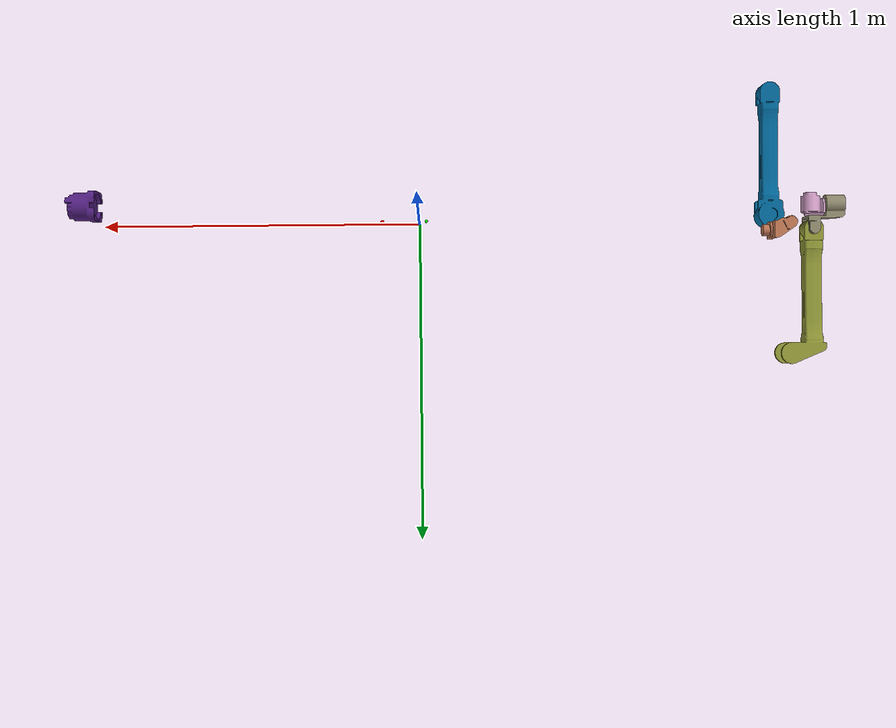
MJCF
<mujoco model="yam_ultra_26">
  <compiler angle="radian" meshdir="assets"/>

  <asset>
    <mesh name="base"  file="base.stl"/>
    <mesh name="link1" file="link1.stl"/>
    <mesh name="link2" file="link2.stl"/>
    <mesh name="link3" file="link3.stl"/>
    <mesh name="link4" file="link4.stl"/>
    <mesh name="link5" file="link5.stl"/>
  </asset>

  <worldbody>
    <geom pos="-0.0374966 -0.0464005 0.187501" quat="0.707105 0 0.707108 0" type="mesh" rgba="0.317647 0.121569 0.498039 1" mesh="base"/>
    <body name="link1" pos="0 0 0.067" quat="0.707105 0 0 -0.707108">
      <inertial pos="-0.00261782 0.00744082 0.0237251" quat="0.602276 0.365837 0.642523 0.300984" mass="0.104154" diaginertia="0.000139023 0.000109628 4.8478e-05"/>
      <joint name="joint1" pos="0 0 0" axis="0 0 1" range="-2.61799 3.05433" actuatorfrcrange="-10 10"/>
      <geom pos="-0.0464 0.0374968 0.119501" quat="0.499998 0.5 0.5 -0.500002" type="mesh" rgba="0.72549 0.45098 0.317647 1" mesh="link1"/>
      <body name="link2" pos="-0.0329 0.02 0.0455" quat="0.499998 0.5 -0.500002 -0.5">
        <inertial pos="0.129165 0.000134495 -0.0321253" quat="0.499976 0.500008 0.500105 0.499911" mass="1.46908" diaginertia="0.0146686 0.014599 0.000800089"/>
        <joint name="joint2" pos="0 0 0" axis="0 0 1" range="0 3.65" actuatorfrcrange="-10 10"/>
        <geom pos="-0.0174977 -0.0740001 -0.07925" quat="0.499998 0.5 0.500002 0.5" type="mesh" rgba="0 0.4 0.6 1" mesh="link2"/>
        <body name="link3" pos="0.264 4.08431e-07 -0.06375" quat="9.38184e-07 -0.707105 -0.707108 9.38187e-07">
          <inertial pos="0.0556042 -0.135083 -0.0340514" quat="0.704407 0.697077 0.121918 -0.0550519" mass="0.982553" diaginertia="0.00765198 0.0076296 0.000876442"/>
          <joint name="joint3" pos="0 0 0" axis="0 0 1" range="0 3.66519" actuatorfrcrange="-10 10"/>
          <geom pos="0.0740003 -0.281499 -0.0813" quat="9.38184e-07 9.38187e-07 -0.707108 -0.707105" type="mesh" rgba="0.552941 0.580392 0.203922 1" mesh="link3"/>
          <body name="link4" pos="0.0600003 -0.244999 -0.00205" quat="1.32679e-06 0 0 -1">
            <!-- link4 mass +0.062 kg vs yam: DM4340 is 62 g heavier than DM4310; diaginertia scaled by mass ratio -->
            <inertial pos="-0.0543529 0.057068 -0.0332231" quat="0.636075 0.627088 0.370444 0.254833" mass="0.52878" diaginertia="0.000926486 0.000896375 0.000335062"/>
            <!-- J4 motor: DM4340 (vs DM4310 on yam) — torque range ±28 Nm -->
            <joint name="joint4" pos="0 0 0" axis="0 0 1" range="-1.5708 1.5708" actuatorfrcrange="-28 28"/>
            <geom pos="-0.0138003 0.0364989 -0.0787882" quat="0.707105 0.707108 0 0" type="mesh" rgba="0.545098 0.52549 0.419608 1" mesh="link4"/>
            <body name="link5" pos="-0.0403003 0.0703851 -0.0323887" quat="9.38184e-07 -0.707105 -9.38187e-07 -0.707108">
              <inertial pos="-3.55003e-05 -0.00717397 0.0375847" quat="0.911516 0.411243 -0.00302177 -0.00303654" mass="0.403307" diaginertia="0.000219794 0.000195686 0.000169647"/>
              <joint name="joint5" pos="0 0 0" axis="0 0 1" range="-1.5708 1.5708" actuatorfrcrange="-10 10"/>
              <geom pos="-0.0463995 0.0311519 0.0265" quat="0.499998 -0.5 -0.5 -0.500002" type="mesh" rgba="0.827451 0.623529 0.784314 1" mesh="link5"/>
              <!-- link_6 is replaced at runtime by combine_arm_and_gripper_xml() -->
              <body name="link_6" pos="2.39858e-07 -0.0419481 0.0404996" quat="0.499998 -0.5 -0.5 -0.500002">
                <inertial pos="0 0 0" mass="1e-6" diaginertia="1e-9 1e-9 1e-9"/>
                <joint name="joint6" pos="0 0 0" axis="0 0 1" range="-2.0944 2.0944" actuatorfrcrange="-10 10"/>
                <site name="tcp_site"   pos="0 0 0"      quat="1 0 0 -1" size="0.005" rgba="1 0 0 1"/>
                <site name="grasp_site" pos="0 0 0.1347" quat="1 0 0 -1" size="0.005" rgba="0 1 0 1"/>
              </body>
            </body>
          </body>
        </body>
      </body>
    </body>
  </worldbody>
</mujoco>
